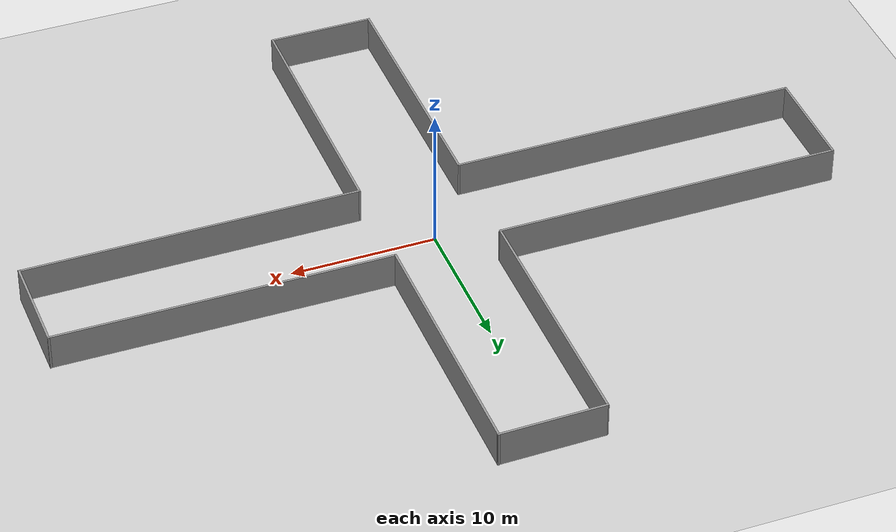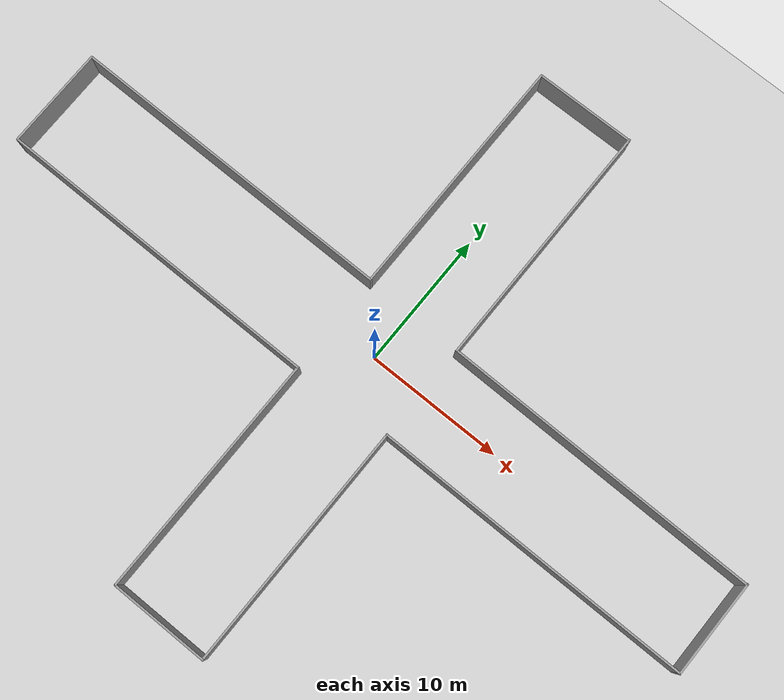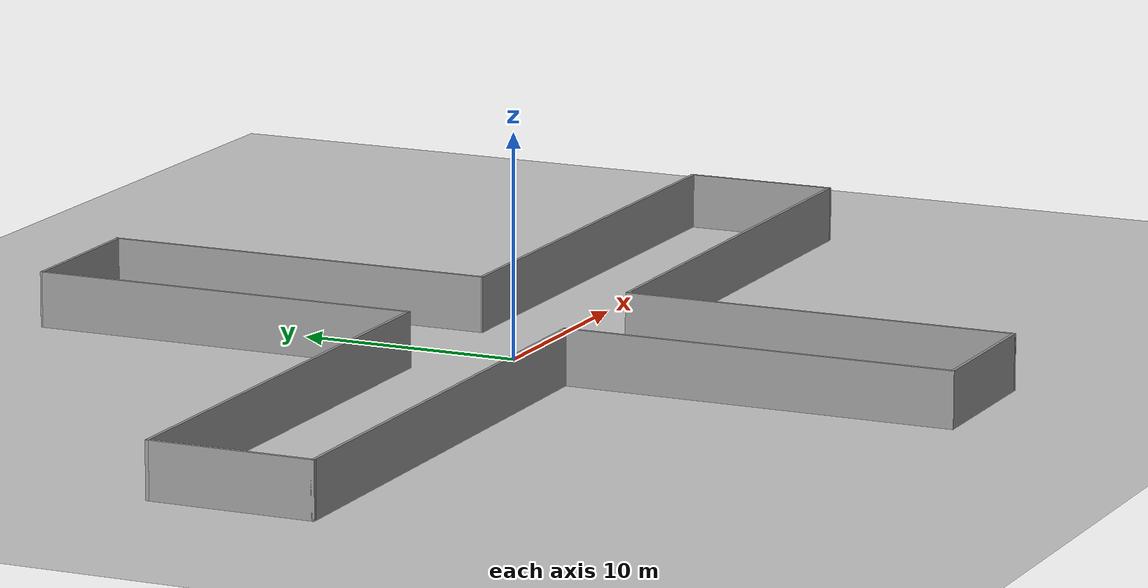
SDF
<sdf version="1.7">
 <world name="default">
  <light name="sun" type="directional">
   <pose>0 0 10 0 -0 0</pose>
   <diffuse>0.8 0.8 0.8 1</diffuse>
   <specular>0.2 0.2 0.2 1</specular>
   <attenuation>
    <range>1000</range>
    <constant>0.9</constant>
    <linear>0.01</linear>
    <quadratic>0.001</quadratic>
   </attenuation>
   <direction>-0.5 0.1 -0.9</direction>
   <spot><inner_angle>0</inner_angle><outer_angle>0</outer_angle><falloff>0</falloff></spot>
  </light>
  <model name="ground_plane">
   <static>1</static>
   <link name="link">
    <collision name="collision">
     <geometry><plane><normal>0 0 1</normal><size>100 100</size></plane></geometry>
     <surface><friction><ode><mu>100</mu><mu2>50</mu2></ode></friction></surface>
    </collision>
    <visual name="visual">
     <cast_shadows>0</cast_shadows>
     <geometry><plane><normal>0 0 1</normal><size>100 100</size></plane></geometry>
     <material>
      <script><uri>file://media/materials/scripts/gazebo.material</uri><name>Gazebo/Grey</name></script>
     </material>
    </visual>
   </link>
  </model>
  <gravity>0 0 -9.8</gravity>
  <magnetic_field>6e-06 2.3e-05 -4.2e-05</magnetic_field>
  <atmosphere type="adiabatic"/>
  <physics type="ode">
   <max_step_size>0.001</max_step_size>
   <real_time_factor>1</real_time_factor>
   <real_time_update_rate>1000</real_time_update_rate>
  </physics>
  <scene><ambient>0.4 0.4 0.4 1</ambient><background>0.7 0.7 0.7 1</background><shadows>1</shadows></scene>
  <audio><device>default</device></audio>
  <spherical_coordinates>
   <surface_model>EARTH_WGS84</surface_model>
   <latitude_deg>0</latitude_deg>
   <longitude_deg>0</longitude_deg>
   <elevation>0</elevation>
   <heading_deg>0</heading_deg>
  </spherical_coordinates>
  <model name="cross_road_model">
   <link name="Wall_0">
    <collision name="Wall_0_Collision">
     <geometry><box><size>17.75 0.15 2.5</size></box></geometry>
     <pose>0 0 1.25 0 -0 0</pose>
    </collision>
    <visual name="Wall_0_Visual">
     <pose>0 0 1.25 0 -0 0</pose>
     <geometry><box><size>17.75 0.15 2.5</size></box></geometry>
     <material>
      <script><uri>file://media/materials/scripts/gazebo.material</uri><name>Gazebo/Grey</name></script>
      <ambient>1 1 1 1</ambient>
     </material>
     <meta><layer>0</layer></meta>
    </visual>
    <pose>-3.14004 -12.6661 0 0 -0 -1.5708</pose>
   </link>
   <link name="Wall_1">
    <collision name="Wall_1_Collision">
     <geometry><box><size>7.25 0.15 2.5</size></box></geometry>
     <pose>0 0 1.25 0 -0 0</pose>
    </collision>
    <visual name="Wall_1_Visual">
     <pose>0 0 1.25 0 -0 0</pose>
     <geometry><box><size>7.25 0.15 2.5</size></box></geometry>
     <material>
      <script><uri>file://media/materials/scripts/gazebo.material</uri><name>Gazebo/Grey</name></script>
      <ambient>1 1 1 1</ambient>
     </material>
     <meta><layer>0</layer></meta>
    </visual>
    <pose>0.409964 -21.4661 0 0 -0 0</pose>
   </link>
   <link name="Wall_10">
    <collision name="Wall_10_Collision">
     <geometry><box><size>24 0.15 2.5</size></box></geometry>
     <pose>0 0 1.25 0 -0 0</pose>
    </collision>
    <visual name="Wall_10_Visual">
     <pose>0 0 1.25 0 -0 0</pose>
     <geometry><box><size>24 0.15 2.5</size></box></geometry>
     <material>
      <script><uri>file://media/materials/scripts/gazebo.material</uri><name>Gazebo/Grey</name></script>
      <ambient>1 1 1 1</ambient>
     </material>
     <meta><layer>0</layer></meta>
    </visual>
    <pose>-15.1354 3.48387 0 0 -0 3.14159</pose>
   </link>
   <link name="Wall_11">
    <collision name="Wall_11_Collision">
     <geometry><box><size>7.5 0.15 2.5</size></box></geometry>
     <pose>0 0 1.25 0 -0 0</pose>
    </collision>
    <visual name="Wall_11_Visual">
     <pose>0 0 1.25 0 -0 0</pose>
     <geometry><box><size>7.5 0.15 2.5</size></box></geometry>
     <material>
      <script><uri>file://media/materials/scripts/gazebo.material</uri><name>Gazebo/Grey</name></script>
      <ambient>1 1 1 1</ambient>
     </material>
     <meta><layer>0</layer></meta>
    </visual>
    <pose>-27.0604 -0.191125 0 0 -0 -1.5708</pose>
   </link>
   <link name="Wall_12">
    <collision name="Wall_12_Collision">
     <geometry><box><size>24 0.15 2.5</size></box></geometry>
     <pose>0 0 1.25 0 -0 0</pose>
    </collision>
    <visual name="Wall_12_Visual">
     <pose>0 0 1.25 0 -0 0</pose>
     <geometry><box><size>24 0.15 2.5</size></box></geometry>
     <material>
      <script><uri>file://media/materials/scripts/gazebo.material</uri><name>Gazebo/Grey</name></script>
      <ambient>1 1 1 1</ambient>
     </material>
     <meta><layer>0</layer></meta>
    </visual>
    <pose>-15.1354 -3.86612 0 0 -0 0</pose>
   </link>
   <link name="Wall_2">
    <collision name="Wall_2_Collision">
     <geometry><box><size>18 0.15 2.5</size></box></geometry>
     <pose>0 0 1.25 0 -0 0</pose>
    </collision>
    <visual name="Wall_2_Visual">
     <pose>0 0 1.25 0 -0 0</pose>
     <geometry><box><size>18 0.15 2.5</size></box></geometry>
     <material>
      <script><uri>file://media/materials/scripts/gazebo.material</uri><name>Gazebo/Grey</name></script>
      <ambient>1 1 1 1</ambient>
     </material>
     <meta><layer>0</layer></meta>
    </visual>
    <pose>3.95996 -12.5411 0 0 -0 1.5708</pose>
   </link>
   <link name="Wall_3">
    <collision name="Wall_3_Collision">
     <geometry><box><size>23.25 0.15 2.5</size></box></geometry>
     <pose>0 0 1.25 0 -0 0</pose>
    </collision>
    <visual name="Wall_3_Visual">
     <pose>0 0 1.25 0 -0 0</pose>
     <geometry><box><size>23.25 0.15 2.5</size></box></geometry>
     <material>
      <script><uri>file://media/materials/scripts/gazebo.material</uri><name>Gazebo/Grey</name></script>
      <ambient>1 1 1 1</ambient>
     </material>
     <meta><layer>0</layer></meta>
    </visual>
    <pose>15.51 -3.61612 0 0 -0 0</pose>
   </link>
   <link name="Wall_4">
    <collision name="Wall_4_Collision">
     <geometry><box><size>7.0529 0.15 2.5</size></box></geometry>
     <pose>0 0 1.25 0 -0 0</pose>
    </collision>
    <visual name="Wall_4_Visual">
     <pose>0 0 1.25 0 -0 0</pose>
     <geometry><box><size>7.0529 0.15 2.5</size></box></geometry>
     <material>
      <script><uri>file://media/materials/scripts/gazebo.material</uri><name>Gazebo/Grey</name></script>
      <ambient>1 1 1 1</ambient>
     </material>
     <meta><layer>0</layer></meta>
    </visual>
    <pose>27.06 -0.164675 0 0 -0 1.5708</pose>
   </link>
   <link name="Wall_5">
    <collision name="Wall_5_Collision">
     <geometry><box><size>23.2149 0.15 2.5</size></box></geometry>
     <pose>0 0 1.25 0 -0 0</pose>
    </collision>
    <visual name="Wall_5_Visual">
     <pose>0 0 1.25 0 -0 0</pose>
     <geometry><box><size>23.2149 0.15 2.5</size></box></geometry>
     <material>
      <script><uri>file://media/materials/scripts/gazebo.material</uri><name>Gazebo/Grey</name></script>
      <ambient>1 1 1 1</ambient>
     </material>
     <meta><layer>0</layer></meta>
    </visual>
    <pose>15.5277 3.32645 0 0 -0 3.13586</pose>
   </link>
   <link name="Wall_6">
    <collision name="Wall_6_Collision">
     <geometry><box><size>18.1971 0.15 2.5</size></box></geometry>
     <pose>0 0 1.25 0 -0 0</pose>
    </collision>
    <visual name="Wall_6_Visual">
     <pose>0 0 1.25 0 -0 0</pose>
     <geometry><box><size>18.1971 0.15 2.5</size></box></geometry>
     <material>
      <script><uri>file://media/materials/scripts/gazebo.material</uri><name>Gazebo/Grey</name></script>
      <ambient>1 1 1 1</ambient>
     </material>
     <meta><layer>0</layer></meta>
    </visual>
    <pose>3.99541 12.4426 0 0 -0 1.5708</pose>
   </link>
   <link name="Wall_8">
    <collision name="Wall_8_Collision">
     <geometry><box><size>7.35658 0.15 2.5</size></box></geometry>
     <pose>0 0 1.25 0 -0 0</pose>
    </collision>
    <visual name="Wall_8_Visual">
     <pose>0 0 1.25 0 -0 0</pose>
     <geometry><box><size>7.35658 0.15 2.5</size></box></geometry>
     <material>
      <script><uri>file://media/materials/scripts/gazebo.material</uri><name>Gazebo/Grey</name></script>
      <ambient>1 1 1 1</ambient>
     </material>
     <meta><layer>0</layer></meta>
    </visual>
    <pose>0.392507 21.3868 0 0 -0 -3.12691</pose>
   </link>
   <link name="Wall_9">
    <collision name="Wall_9_Collision">
     <geometry><box><size>18 0.15 2.5</size></box></geometry>
     <pose>0 0 1.25 0 -0 0</pose>
    </collision>
    <visual name="Wall_9_Visual">
     <pose>0 0 1.25 0 -0 0</pose>
     <geometry><box><size>18 0.15 2.5</size></box></geometry>
     <material>
      <script><uri>file://media/materials/scripts/gazebo.material</uri><name>Gazebo/Grey</name></script>
      <ambient>1 1 1 1</ambient>
     </material>
     <meta><layer>0</layer></meta>
    </visual>
    <pose>-3.21039 12.4089 0 0 -0 -1.5708</pose>
   </link>
   <static>1</static>
  </model>
 </world>
</sdf>
